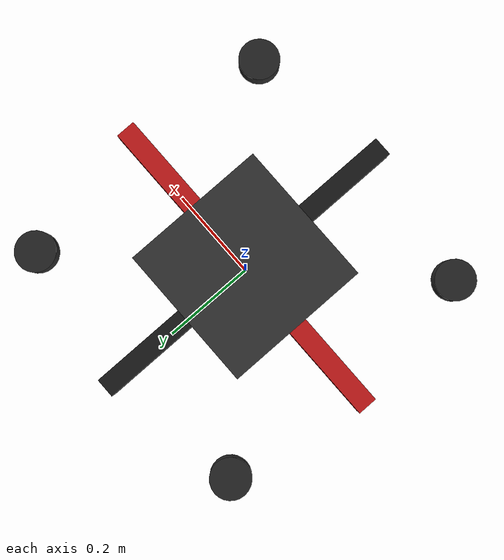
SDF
<sdf version="1.9">
  <model name="test1">
    <include merge="true">
      <uri>model://test1_base</uri>
    </include>

    <plugin filename="gz-sim-multicopter-motor-model-system" name="gz::sim::systems::MulticopterMotorModel">
      <jointName>rotor_0_joint</jointName>
      <linkName>rotor_0</linkName>
      <motorNumber>0</motorNumber>
      <turningDirection>ccw</turningDirection>
      <commandSubTopic>command/motor_speed</commandSubTopic>
      <motorType>velocity</motorType>
      <timeConstantUp>0.0125</timeConstantUp>
      <timeConstantDown>0.025</timeConstantDown>
      <maxRotVelocity>1100.0</maxRotVelocity>
      <motorConstant>8.54858e-06</motorConstant>
      <momentConstant>0.016</momentConstant>
      <rotorDragCoefficient>1.0e-04</rotorDragCoefficient>
      <rollingMomentCoefficient>1.0e-06</rollingMomentCoefficient>
      <rotorVelocitySlowdownSim>10.0</rotorVelocitySlowdownSim>
    </plugin>

    <plugin filename="gz-sim-multicopter-motor-model-system" name="gz::sim::systems::MulticopterMotorModel">
      <jointName>rotor_1_joint</jointName>
      <linkName>rotor_1</linkName>
      <motorNumber>1</motorNumber>
      <turningDirection>ccw</turningDirection>
      <commandSubTopic>command/motor_speed</commandSubTopic>
      <motorType>velocity</motorType>
      <timeConstantUp>0.0125</timeConstantUp>
      <timeConstantDown>0.025</timeConstantDown>
      <maxRotVelocity>1100.0</maxRotVelocity>
      <motorConstant>8.54858e-06</motorConstant>
      <momentConstant>0.016</momentConstant>
      <rotorDragCoefficient>1.0e-04</rotorDragCoefficient>
      <rollingMomentCoefficient>1.0e-06</rollingMomentCoefficient>
      <rotorVelocitySlowdownSim>10.0</rotorVelocitySlowdownSim>
    </plugin>

    <plugin filename="gz-sim-multicopter-motor-model-system" name="gz::sim::systems::MulticopterMotorModel">
      <jointName>rotor_2_joint</jointName>
      <linkName>rotor_2</linkName>
      <motorNumber>2</motorNumber>
      <turningDirection>cw</turningDirection>
      <commandSubTopic>command/motor_speed</commandSubTopic>
      <motorType>velocity</motorType>
      <timeConstantUp>0.0125</timeConstantUp>
      <timeConstantDown>0.025</timeConstantDown>
      <maxRotVelocity>1100.0</maxRotVelocity>
      <motorConstant>8.54858e-06</motorConstant>
      <momentConstant>0.016</momentConstant>
      <rotorDragCoefficient>1.0e-04</rotorDragCoefficient>
      <rollingMomentCoefficient>1.0e-06</rollingMomentCoefficient>
      <rotorVelocitySlowdownSim>10.0</rotorVelocitySlowdownSim>
    </plugin>

    <plugin filename="gz-sim-multicopter-motor-model-system" name="gz::sim::systems::MulticopterMotorModel">
      <jointName>rotor_3_joint</jointName>
      <linkName>rotor_3</linkName>
      <motorNumber>3</motorNumber>
      <turningDirection>cw</turningDirection>
      <commandSubTopic>command/motor_speed</commandSubTopic>
      <motorType>velocity</motorType>
      <timeConstantUp>0.0125</timeConstantUp>
      <timeConstantDown>0.025</timeConstantDown>
      <maxRotVelocity>1100.0</maxRotVelocity>
      <motorConstant>8.54858e-06</motorConstant>
      <momentConstant>0.016</momentConstant>
      <rotorDragCoefficient>1.0e-04</rotorDragCoefficient>
      <rollingMomentCoefficient>1.0e-06</rollingMomentCoefficient>
      <rotorVelocitySlowdownSim>10.0</rotorVelocitySlowdownSim>
    </plugin>
  </model>
</sdf>

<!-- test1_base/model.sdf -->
<sdf version="1.9">
  <model name="test1_base">
    <static>false</static>
    <pose>0 0 0 0 0 0</pose>

    <link name="base_link">
      <pose>0 0 0.12 0 0 0</pose>

      <inertial>
        <pose>0 0 0 0 0 0</pose>
        <mass>3.5</mass>
        <inertia>
          <ixx>0.035</ixx>
          <iyy>0.035</iyy>
          <izz>0.065</izz>
          <ixy>0</ixy>
          <ixz>0</ixz>
          <iyz>0</iyz>
        </inertia>
      </inertial>

      <collision name="body_collision">
        <pose>0 0 0 0 0 0</pose>
        <geometry>
          <box>
            <size>0.3 0.3 0.08</size>
          </box>
        </geometry>
      </collision>

      <collision name="arm_x_collision">
        <pose>0 0 0 0 0 0</pose>
        <geometry>
          <box>
            <size>0.7 0.04 0.04</size>
          </box>
        </geometry>
      </collision>

      <collision name="arm_y_collision">
        <pose>0 0 0 0 0 0</pose>
        <geometry>
          <box>
            <size>0.04 0.7 0.04</size>
          </box>
        </geometry>
      </collision>

      <collision name="landing_skid_left_collision">
        <pose>0 -0.14 -0.09 0 0 0</pose>
        <geometry>
          <cylinder>
            <radius>0.01</radius>
            <length>0.32</length>
          </cylinder>
        </geometry>
      </collision>

      <collision name="landing_skid_right_collision">
        <pose>0 0.14 -0.09 0 0 0</pose>
        <geometry>
          <cylinder>
            <radius>0.01</radius>
            <length>0.32</length>
          </cylinder>
        </geometry>
      </collision>

      <visual name="body_visual">
        <pose>0 0 0 0 0 0</pose>
        <geometry>
          <box>
            <size>0.3 0.3 0.08</size>
          </box>
        </geometry>
        <material>
          <ambient>0.15 0.15 0.15 1</ambient>
          <diffuse>0.2 0.2 0.2 1</diffuse>
          <specular>0.1 0.1 0.1 1</specular>
        </material>
      </visual>

      <visual name="arm_x_visual">
        <pose>0 0 0 0 0 0</pose>
        <geometry>
          <box>
            <size>0.7 0.04 0.04</size>
          </box>
        </geometry>
        <material>
          <ambient>0.8 0.1 0.1 1</ambient>
          <diffuse>0.8 0.1 0.1 1</diffuse>
          <specular>0.2 0.2 0.2 1</specular>
        </material>
      </visual>

      <visual name="arm_y_visual">
        <pose>0 0 0 0 0 0</pose>
        <geometry>
          <box>
            <size>0.04 0.7 0.04</size>
          </box>
        </geometry>
        <material>
          <ambient>0.1 0.1 0.1 1</ambient>
          <diffuse>0.1 0.1 0.1 1</diffuse>
          <specular>0.2 0.2 0.2 1</specular>
        </material>
      </visual>

      <visual name="motor_fl_visual">
        <pose>0.28 0.28 0.02 0 0 0</pose>
        <geometry>
          <cylinder>
            <radius>0.04</radius>
            <length>0.03</length>
          </cylinder>
        </geometry>
        <material>
          <ambient>0.15 0.15 0.15 1</ambient>
          <diffuse>0.15 0.15 0.15 1</diffuse>
        </material>
      </visual>

      <visual name="motor_fr_visual">
        <pose>0.28 -0.28 0.02 0 0 0</pose>
        <geometry>
          <cylinder>
            <radius>0.04</radius>
            <length>0.03</length>
          </cylinder>
        </geometry>
        <material>
          <ambient>0.15 0.15 0.15 1</ambient>
          <diffuse>0.15 0.15 0.15 1</diffuse>
        </material>
      </visual>

      <visual name="motor_rl_visual">
        <pose>-0.28 0.28 0.02 0 0 0</pose>
        <geometry>
          <cylinder>
            <radius>0.04</radius>
            <length>0.03</length>
          </cylinder>
        </geometry>
        <material>
          <ambient>0.15 0.15 0.15 1</ambient>
          <diffuse>0.15 0.15 0.15 1</diffuse>
        </material>
      </visual>

      <visual name="motor_rr_visual">
        <pose>-0.28 -0.28 0.02 0 0 0</pose>
        <geometry>
          <cylinder>
            <radius>0.04</radius>
            <length>0.03</length>
          </cylinder>
        </geometry>
        <material>
          <ambient>0.15 0.15 0.15 1</ambient>
          <diffuse>0.15 0.15 0.15 1</diffuse>
        </material>
      </visual>

      <visual name="landing_skid_left_visual">
        <pose>0 -0.14 -0.09 1.57079632679 0 0</pose>
        <geometry>
          <cylinder>
            <radius>0.01</radius>
            <length>0.32</length>
          </cylinder>
        </geometry>
        <material>
          <ambient>0.05 0.05 0.05 1</ambient>
          <diffuse>0.05 0.05 0.05 1</diffuse>
        </material>
      </visual>

      <visual name="landing_skid_right_visual">
        <pose>0 0.14 -0.09 1.57079632679 0 0</pose>
        <geometry>
          <cylinder>
            <radius>0.01</radius>
            <length>0.32</length>
          </cylinder>
        </geometry>
        <material>
          <ambient>0.05 0.05 0.05 1</ambient>
          <diffuse>0.05 0.05 0.05 1</diffuse>
        </material>
      </visual>
    </link>
  </model>
</sdf>
